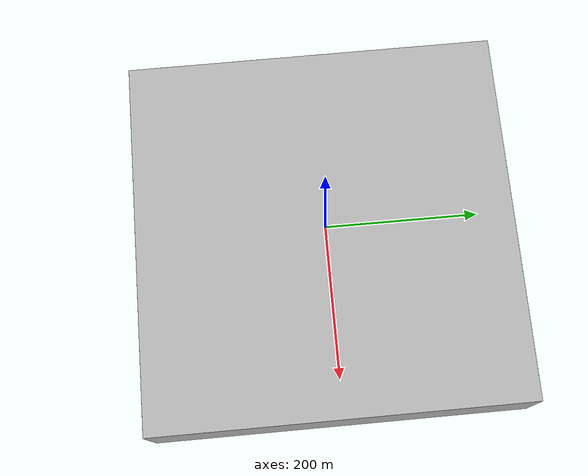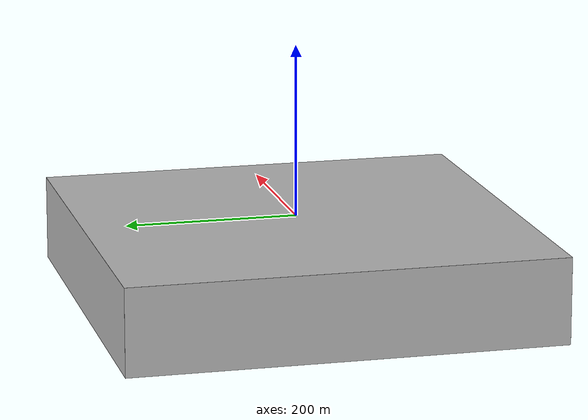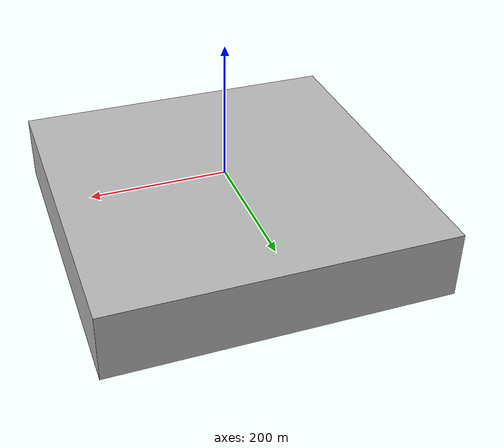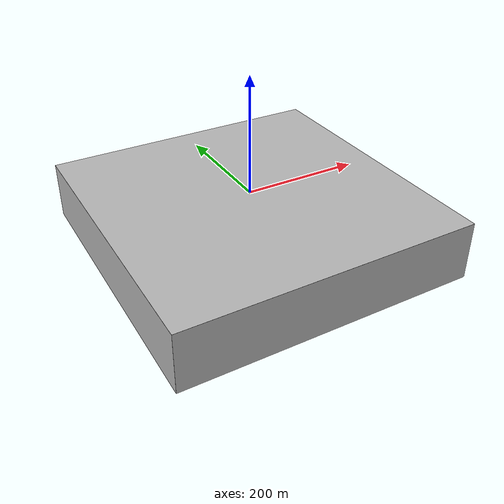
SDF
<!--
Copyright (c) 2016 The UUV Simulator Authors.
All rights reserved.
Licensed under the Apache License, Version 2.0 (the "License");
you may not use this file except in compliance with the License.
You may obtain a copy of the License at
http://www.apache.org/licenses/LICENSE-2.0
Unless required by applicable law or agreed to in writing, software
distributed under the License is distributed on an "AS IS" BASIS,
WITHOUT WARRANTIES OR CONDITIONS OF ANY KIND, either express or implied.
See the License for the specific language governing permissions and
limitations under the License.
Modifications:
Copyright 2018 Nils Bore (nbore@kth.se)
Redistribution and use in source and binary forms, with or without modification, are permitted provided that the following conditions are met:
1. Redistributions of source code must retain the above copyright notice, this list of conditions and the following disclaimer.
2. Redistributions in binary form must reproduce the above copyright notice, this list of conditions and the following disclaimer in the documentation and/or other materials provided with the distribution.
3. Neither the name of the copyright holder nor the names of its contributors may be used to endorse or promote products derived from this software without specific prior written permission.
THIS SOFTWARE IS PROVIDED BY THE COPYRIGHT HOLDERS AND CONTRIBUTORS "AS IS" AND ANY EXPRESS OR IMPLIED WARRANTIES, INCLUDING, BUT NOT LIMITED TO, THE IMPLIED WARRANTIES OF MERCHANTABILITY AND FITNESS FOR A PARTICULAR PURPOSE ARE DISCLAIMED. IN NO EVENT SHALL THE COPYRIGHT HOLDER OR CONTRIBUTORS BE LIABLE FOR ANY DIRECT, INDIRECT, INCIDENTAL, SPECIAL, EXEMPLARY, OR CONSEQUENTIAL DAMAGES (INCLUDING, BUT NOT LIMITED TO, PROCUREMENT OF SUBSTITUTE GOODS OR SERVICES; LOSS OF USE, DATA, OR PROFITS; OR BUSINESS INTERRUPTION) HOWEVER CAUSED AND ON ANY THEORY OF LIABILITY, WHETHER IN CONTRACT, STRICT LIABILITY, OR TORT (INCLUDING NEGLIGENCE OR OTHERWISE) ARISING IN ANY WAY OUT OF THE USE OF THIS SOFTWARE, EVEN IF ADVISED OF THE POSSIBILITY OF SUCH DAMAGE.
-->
<sdf version="1.5">
 <world name="random_rocks">
  <physics name="default_physics" default="true" type="ode">
   <max_step_size>0.002</max_step_size>
   <real_time_factor>1</real_time_factor>
   <real_time_update_rate>500</real_time_update_rate>
   <ode><solver><type>quick</type><iters>50</iters><sor>0.5</sor></solver></ode>
  </physics>
  <scene>
   <ambient>0.01 0.01 0.01 1.0</ambient>
   <sky><clouds><speed>12</speed></clouds></sky>
   <shadows>1</shadows>
   <fog>
    <color>0.1 0.2 0.3 1.0</color>
    <type>linear</type>
    <density>0.001</density>
    <start>10</start>
    <end>200</end>
   </fog>
  </scene>
  <spherical_coordinates>
   <latitude_deg>56.71897669633431</latitude_deg>
   <longitude_deg>3.515625</longitude_deg>
  </spherical_coordinates>
  <include><uri>model://sun</uri></include>
  <include><uri>model://small_ocean_box</uri></include>
  <plugin name="underwater_world" filename="libuuv_underwater_world_ros_plugin.so">
   <namespace>hydrodynamics</namespace>
   <constant_current>
    <topic>current_velocity</topic>
    <velocity><mean>0</mean><min>-5</min><max>5</max><mu>0.0</mu><noiseAmp>0.0</noiseAmp></velocity>
    <horizontal_angle>
     <mean>0</mean>
     <min>-3.141592653589793238</min>
     <max>3.141592653589793238</max>
     <mu>0.0</mu>
     <noiseAmp>0.0</noiseAmp>
    </horizontal_angle>
    <vertical_angle>
     <mean>0</mean>
     <min>-3.141592653589793238</min>
     <max>3.141592653589793238</max>
     <mu>0.0</mu>
     <noiseAmp>0.0</noiseAmp>
    </vertical_angle>
   </constant_current>
  </plugin>
 </world>
</sdf>

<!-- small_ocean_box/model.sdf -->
<sdf version="1.5">
  <model name="small_ocean_box">
    <static>true</static>
    <link name="link">
      <visual name="ground">
        <cast_shadows>false</cast_shadows>
        <pose>0 0 -100 0 0 0</pose>
        <geometry>
          <box>
            <size>500 500 .1</size>
          </box>
        </geometry>
        <material>
          <script>
            <uri>file://Media/materials/scripts/sand.material</uri>
            <name>UUVSimulator/SandAndStones</name>
          </script>
        </material>
		<laser_retro>50</laser_retro>
      </visual>

      <collision name="ground">
        <pose>0 0 -100 0 0 0</pose>
        <geometry>
          <box>
            <size>500 500 .1</size>
          </box>
        </geometry>
		<laser_retro>50</laser_retro>
      </collision>

      <visual name="surface">
        <cast_shadows>false</cast_shadows>
        <pose>0 0 0 0 0 0</pose>
        <geometry>
          <box>
            <size>500 500 .1</size>
          </box>
        </geometry>
        <material>
          <script>
            <uri>file://Media/materials/scripts/water.material</uri>
            <name>UUVSimulator/StaticDeepWater</name>
          </script>
        </material>
      </visual>

      <visual name="north">
        <cast_shadows>false</cast_shadows>
        <pose>250 0 -50 0 0 0</pose>
        <geometry>
          <box>
            <size>.1 500 100</size>
          </box>
        </geometry>
        <material>
          <script>
            <uri>file://Media/materials/scripts/water.material</uri>
            <name>UUVSimulator/SeaWall</name>
          </script>
        </material>
      </visual>

      <visual name="south">
        <cast_shadows>false</cast_shadows>
        <pose>-250 0 -50 0 0 0</pose>
        <geometry>
          <box>
            <size>.1 500 100</size>
          </box>
        </geometry>
        <material>
          <script>
            <uri>file://Media/materials/scripts/water.material</uri>
            <name>UUVSimulator/SeaWall</name>
          </script>
        </material>
      </visual>

      <visual name="east">
        <cast_shadows>false</cast_shadows>
        <pose>0 -250 -50 0 0 0</pose>
        <geometry>
          <box>
            <size>500 .1 100</size>
          </box>
        </geometry>
        <material>
          <script>
            <uri>file://Media/materials/scripts/water.material</uri>
            <name>UUVSimulator/SeaWall</name>
          </script>
        </material>
      </visual>

      <visual name="west">
        <cast_shadows>false</cast_shadows>
        <pose>0 250 -50 0 0 0</pose>
        <geometry>
          <box>
            <size>500 .1 100</size>
          </box>
        </geometry>
        <material>
          <script>
            <uri>file://Media/materials/scripts/water.material</uri>
            <name>UUVSimulator/SeaWall</name>
          </script>
        </material>
      </visual>
    </link>
  </model>
</sdf>
